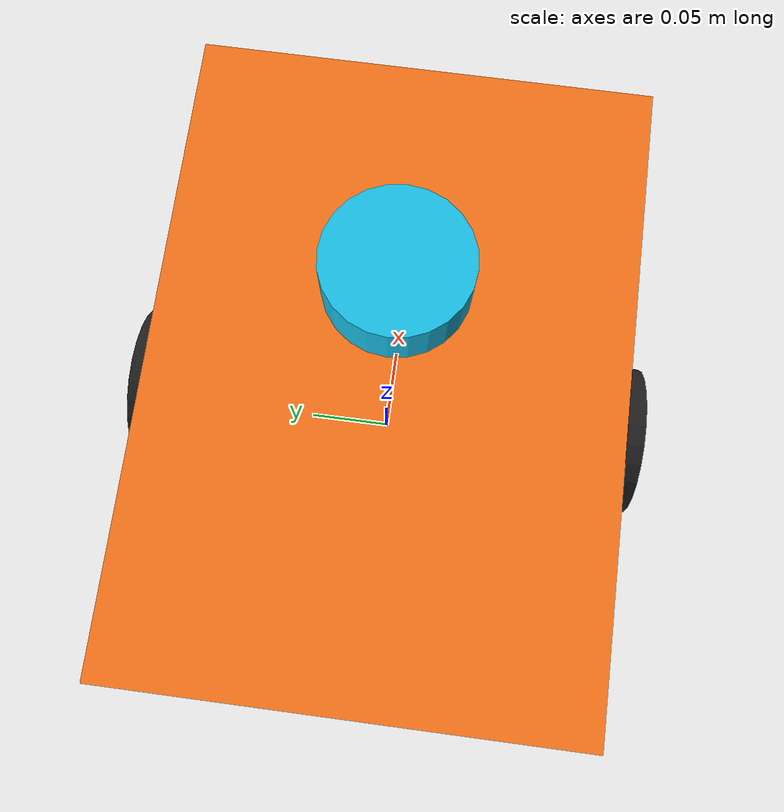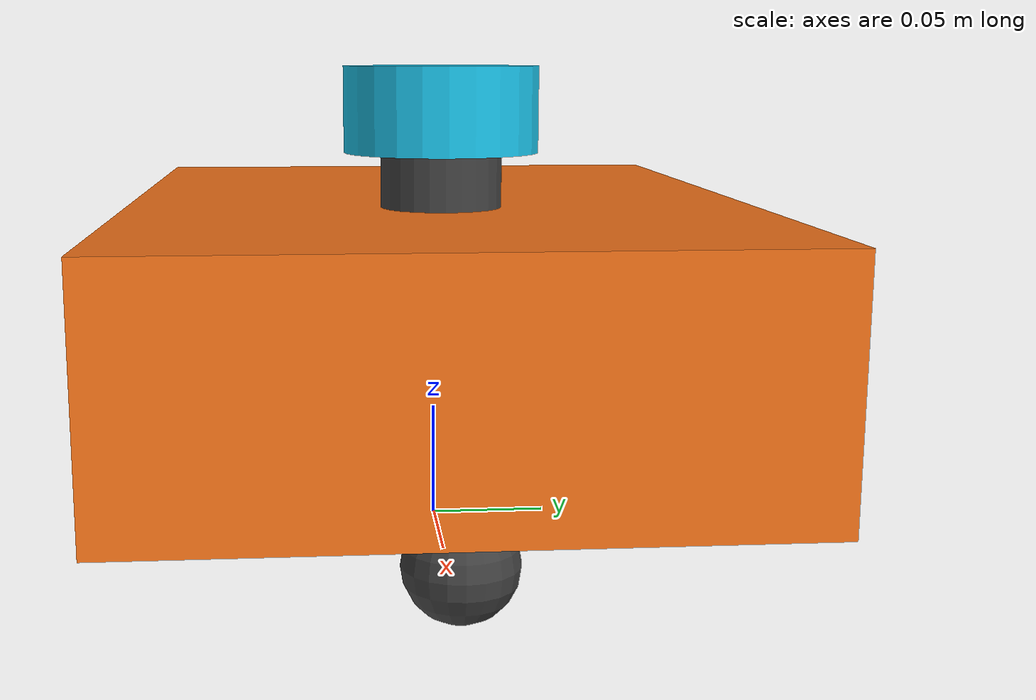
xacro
<?xml version="1.0"?>
<robot name="maze_bot" xmlns:xacro="http://www.ros.org/wiki/xacro">

  <!-- ==================== PARAMETERS ==================== -->
  <xacro:property name="chassis_length" value="0.36"/>
  <xacro:property name="chassis_width" value="0.26"/>
  <xacro:property name="chassis_height" value="0.10"/>
  <xacro:property name="chassis_mass" value="2.5"/>

  <xacro:property name="wheel_radius" value="0.045"/>
  <xacro:property name="wheel_width" value="0.025"/>
  <xacro:property name="wheel_mass" value="0.25"/>
  <xacro:property name="wheel_track" value="0.28"/>

  <xacro:property name="caster_radius" value="0.0225"/>
  <xacro:property name="caster_mass" value="0.1"/>

  <xacro:property name="lidar_radius" value="0.04"/>
  <xacro:property name="lidar_height" value="0.035"/>
  <xacro:property name="lidar_mass" value="0.15"/>

  <!-- ==================== BASE FOOTPRINT ==================== -->
  <link name="base_footprint"/>

  <joint name="base_joint" type="fixed">
    <parent link="base_footprint"/>
    <child link="base_link"/>
    <origin xyz="0 0 ${wheel_radius}" rpy="0 0 0"/>
  </joint>

  <!-- ==================== BASE LINK / CHASSIS ==================== -->
  <link name="base_link">
    <visual>
      <origin xyz="0 0 ${chassis_height / 2}" rpy="0 0 0"/>
      <geometry>
        <box size="${chassis_length} ${chassis_width} ${chassis_height}"/>
      </geometry>
      <material name="chassis_orange">
        <color rgba="0.95 0.45 0.1 1.0"/>
      </material>
    </visual>

    <collision>
      <origin xyz="0 0 ${chassis_height / 2}" rpy="0 0 0"/>
      <geometry>
        <box size="${chassis_length} ${chassis_width} ${chassis_height}"/>
      </geometry>
    </collision>

    <inertial>
      <origin xyz="0 0 ${chassis_height / 2}" rpy="0 0 0"/>
      <mass value="${chassis_mass}"/>
      <inertia
        ixx="${(1.0 / 12.0) * chassis_mass * (chassis_width * chassis_width + chassis_height * chassis_height)}"
        ixy="0.0"
        ixz="0.0"
        iyy="${(1.0 / 12.0) * chassis_mass * (chassis_length * chassis_length + chassis_height * chassis_height)}"
        iyz="0.0"
        izz="${(1.0 / 12.0) * chassis_mass * (chassis_length * chassis_length + chassis_width * chassis_width)}"/>
    </inertial>
  </link>

  <gazebo reference="base_link">
    <visual>
      <material>
        <ambient>0.95 0.45 0.1 1.0</ambient>
        <diffuse>0.95 0.45 0.1 1.0</diffuse>
        <specular>0.4 0.4 0.4 1.0</specular>
      </material>
    </visual>
  </gazebo>

  <!-- ==================== WHEEL MACRO ==================== -->
  <xacro:macro name="wheel" params="prefix y_reflect">
    <link name="${prefix}_wheel">
      <visual>
        <origin xyz="0 0 0" rpy="${pi/2} 0 0"/>
        <geometry>
          <cylinder radius="${wheel_radius}" length="${wheel_width}"/>
        </geometry>
        <material name="wheel_black">
          <color rgba="0.12 0.12 0.12 1.0"/>
        </material>
      </visual>

      <collision>
        <origin xyz="0 0 0" rpy="${pi/2} 0 0"/>
        <geometry>
          <cylinder radius="${wheel_radius}" length="${wheel_width}"/>
        </geometry>
      </collision>

      <inertial>
        <origin xyz="0 0 0" rpy="${pi/2} 0 0"/>
        <mass value="${wheel_mass}"/>
        <inertia
          ixx="${(1.0 / 12.0) * wheel_mass * (3.0 * wheel_radius * wheel_radius + wheel_width * wheel_width)}"
          ixy="0.0"
          ixz="0.0"
          iyy="${(1.0 / 12.0) * wheel_mass * (3.0 * wheel_radius * wheel_radius + wheel_width * wheel_width)}"
          iyz="0.0"
          izz="${0.5 * wheel_mass * (wheel_radius * wheel_radius)}"/>
      </inertial>
    </link>

    <joint name="${prefix}_wheel_joint" type="continuous">
      <parent link="base_link"/>
      <child link="${prefix}_wheel"/>
      <origin xyz="0 ${y_reflect * (wheel_track / 2)} 0" rpy="0 0 0"/>
      <axis xyz="0 1 0"/>
    </joint>

    <gazebo reference="${prefix}_wheel">
      <visual>
        <material>
          <ambient>0.15 0.15 0.15 1.0</ambient>
          <diffuse>0.15 0.15 0.15 1.0</diffuse>
        </material>
      </visual>
      <mu1>1.2</mu1>
      <mu2>1.2</mu2>
      <kp>1000000.0</kp>
      <kd>1.0</kd>
    </gazebo>
  </xacro:macro>

  <!-- Instantiate Left and Right Drive Wheels -->
  <xacro:wheel prefix="left" y_reflect="1"/>
  <xacro:wheel prefix="right" y_reflect="-1"/>

  <!-- ==================== FRONT CASTER ==================== -->
  <link name="front_caster">
    <visual>
      <origin xyz="0 0 0" rpy="0 0 0"/>
      <geometry>
        <sphere radius="${caster_radius}"/>
      </geometry>
      <material name="dark_grey">
        <color rgba="0.25 0.25 0.25 1.0"/>
      </material>
    </visual>

    <collision>
      <origin xyz="0 0 0" rpy="0 0 0"/>
      <geometry>
        <sphere radius="${caster_radius}"/>
      </geometry>
    </collision>

    <inertial>
      <origin xyz="0 0 0" rpy="0 0 0"/>
      <mass value="${caster_mass}"/>
      <inertia
        ixx="${(2.0 / 5.0) * caster_mass * caster_radius * caster_radius}"
        ixy="0.0"
        ixz="0.0"
        iyy="${(2.0 / 5.0) * caster_mass * caster_radius * caster_radius}"
        iyz="0.0"
        izz="${(2.0 / 5.0) * caster_mass * caster_radius * caster_radius}"/>
    </inertial>
  </link>

  <joint name="front_caster_joint" type="fixed">
    <parent link="base_link"/>
    <child link="front_caster"/>
    <origin xyz="${chassis_length/2 - 0.05} 0 ${caster_radius - wheel_radius}" rpy="0 0 0"/>
  </joint>

  <gazebo reference="front_caster">
    <visual>
      <material>
        <ambient>0.25 0.25 0.25 1.0</ambient>
        <diffuse>0.25 0.25 0.25 1.0</diffuse>
      </material>
    </visual>
    <mu1>0.001</mu1>
    <mu2>0.001</mu2>
  </gazebo>

  <!-- ==================== REAR CASTER ==================== -->
  <link name="rear_caster">
    <visual>
      <origin xyz="0 0 0" rpy="0 0 0"/>
      <geometry>
        <sphere radius="${caster_radius}"/>
      </geometry>
      <material name="dark_grey">
        <color rgba="0.25 0.25 0.25 1.0"/>
      </material>
    </visual>

    <collision>
      <origin xyz="0 0 0" rpy="0 0 0"/>
      <geometry>
        <sphere radius="${caster_radius}"/>
      </geometry>
    </collision>

    <inertial>
      <origin xyz="0 0 0" rpy="0 0 0"/>
      <mass value="${caster_mass}"/>
      <inertia
        ixx="${(2.0 / 5.0) * caster_mass * caster_radius * caster_radius}"
        ixy="0.0"
        ixz="0.0"
        iyy="${(2.0 / 5.0) * caster_mass * caster_radius * caster_radius}"
        iyz="0.0"
        izz="${(2.0 / 5.0) * caster_mass * caster_radius * caster_radius}"/>
    </inertial>
  </link>

  <joint name="rear_caster_joint" type="fixed">
    <parent link="base_link"/>
    <child link="rear_caster"/>
    <origin xyz="${-chassis_length/2 + 0.05} 0 ${caster_radius - wheel_radius}" rpy="0 0 0"/>
  </joint>

  <gazebo reference="rear_caster">
    <visual>
      <material>
        <ambient>0.25 0.25 0.25 1.0</ambient>
        <diffuse>0.25 0.25 0.25 1.0</diffuse>
      </material>
    </visual>
    <mu1>0.001</mu1>
    <mu2>0.001</mu2>
  </gazebo>

  <!-- ==================== LIDAR TOWER & SENSOR ==================== -->
  <link name="lidar_mount">
    <visual>
      <origin xyz="0 0 0.02" rpy="0 0 0"/>
      <geometry>
        <cylinder radius="0.025" length="0.04"/>
      </geometry>
      <material name="dark_grey">
        <color rgba="0.25 0.25 0.25 1.0"/>
      </material>
    </visual>
    <collision>
      <origin xyz="0 0 0.02" rpy="0 0 0"/>
      <geometry>
        <cylinder radius="0.025" length="0.04"/>
      </geometry>
    </collision>
    <inertial>
      <origin xyz="0 0 0.02" rpy="0 0 0"/>
      <mass value="0.05"/>
      <inertia ixx="0.0001" ixy="0" ixz="0" iyy="0.0001" iyz="0" izz="0.0001"/>
    </inertial>
  </link>

  <joint name="lidar_mount_joint" type="fixed">
    <parent link="base_link"/>
    <child link="lidar_mount"/>
    <origin xyz="0.04 0 ${chassis_height}" rpy="0 0 0"/>
  </joint>

  <link name="lidar_link">
    <visual>
      <origin xyz="0 0 0" rpy="0 0 0"/>
      <geometry>
        <cylinder radius="${lidar_radius}" length="${lidar_height}"/>
      </geometry>
      <material name="lidar_cyan">
        <color rgba="0.1 0.75 0.9 1.0"/>
      </material>
    </visual>

    <collision>
      <origin xyz="0 0 0" rpy="0 0 0"/>
      <geometry>
        <cylinder radius="${lidar_radius}" length="${lidar_height}"/>
      </geometry>
    </collision>

    <inertial>
      <origin xyz="0 0 0" rpy="0 0 0"/>
      <mass value="${lidar_mass}"/>
      <inertia
        ixx="${(1.0 / 12.0) * lidar_mass * (3.0 * lidar_radius * lidar_radius + lidar_height * lidar_height)}"
        ixy="0.0"
        ixz="0.0"
        iyy="${(1.0 / 12.0) * lidar_mass * (3.0 * lidar_radius * lidar_radius + lidar_height * lidar_height)}"
        iyz="0.0"
        izz="${0.5 * lidar_mass * (lidar_radius * lidar_radius)}"/>
    </inertial>
  </link>

  <joint name="lidar_joint" type="fixed">
    <parent link="lidar_mount"/>
    <child link="lidar_link"/>
    <origin xyz="0 0 0.04" rpy="0 0 0"/>
  </joint>

  <!-- Gazebo LiDAR Sensor Configuration -->
  <gazebo reference="lidar_link">
    <visual>
      <material>
        <ambient>0.1 0.75 0.9 1.0</ambient>
        <diffuse>0.1 0.75 0.9 1.0</diffuse>
        <specular>0.5 0.5 0.5 1.0</specular>
      </material>
    </visual>
    <sensor name="lidar" type="gpu_lidar">
      <pose>0 0 0 0 0 0</pose>
      <always_on>true</always_on>
      <visualize>true</visualize>
      <update_rate>15</update_rate>
      <topic>scan</topic>
      <gz_frame_id>lidar_link</gz_frame_id>
      <lidar>
        <scan>
          <horizontal>
            <samples>360</samples>
            <resolution>1</resolution>
            <min_angle>-3.14159265</min_angle>
            <max_angle>3.14159265</max_angle>
          </horizontal>
        </scan>
        <range>
          <min>0.12</min>
          <max>12.0</max>
          <resolution>0.01</resolution>
        </range>
        <noise>
          <type>gaussian</type>
          <mean>0.0</mean>
          <stddev>0.005</stddev>
        </noise>
      </lidar>
    </sensor>
  </gazebo>

  <!-- ==================== GAZEBO HARMONIC PLUGINS ==================== -->
  <gazebo>
    <!-- Differential Drive Controller Plugin -->
    <plugin filename="gz-sim-diff-drive-system" name="gz::sim::systems::DiffDrive">
      <left_joint>left_wheel_joint</left_joint>
      <right_joint>right_wheel_joint</right_joint>
      <wheel_separation>${wheel_track}</wheel_separation>
      <wheel_radius>${wheel_radius}</wheel_radius>
      <odom_publish_frequency>30</odom_publish_frequency>
      <topic>cmd_vel</topic>
      <odom_topic>odom</odom_topic>
      <tf_topic>tf</tf_topic>
      <frame_id>odom</frame_id>
      <child_frame_id>base_footprint</child_frame_id>
      <max_linear_acceleration>1.5</max_linear_acceleration>
      <min_linear_acceleration>-1.5</min_linear_acceleration>
      <max_angular_acceleration>3.0</max_angular_acceleration>
      <min_angular_acceleration>-3.0</min_angular_acceleration>
    </plugin>

    <!-- Joint State Publisher Plugin -->
    <plugin filename="gz-sim-joint-state-publisher-system" name="gz::sim::systems::JointStatePublisher">
      <topic>joint_states</topic>
    </plugin>
  </gazebo>

</robot>
